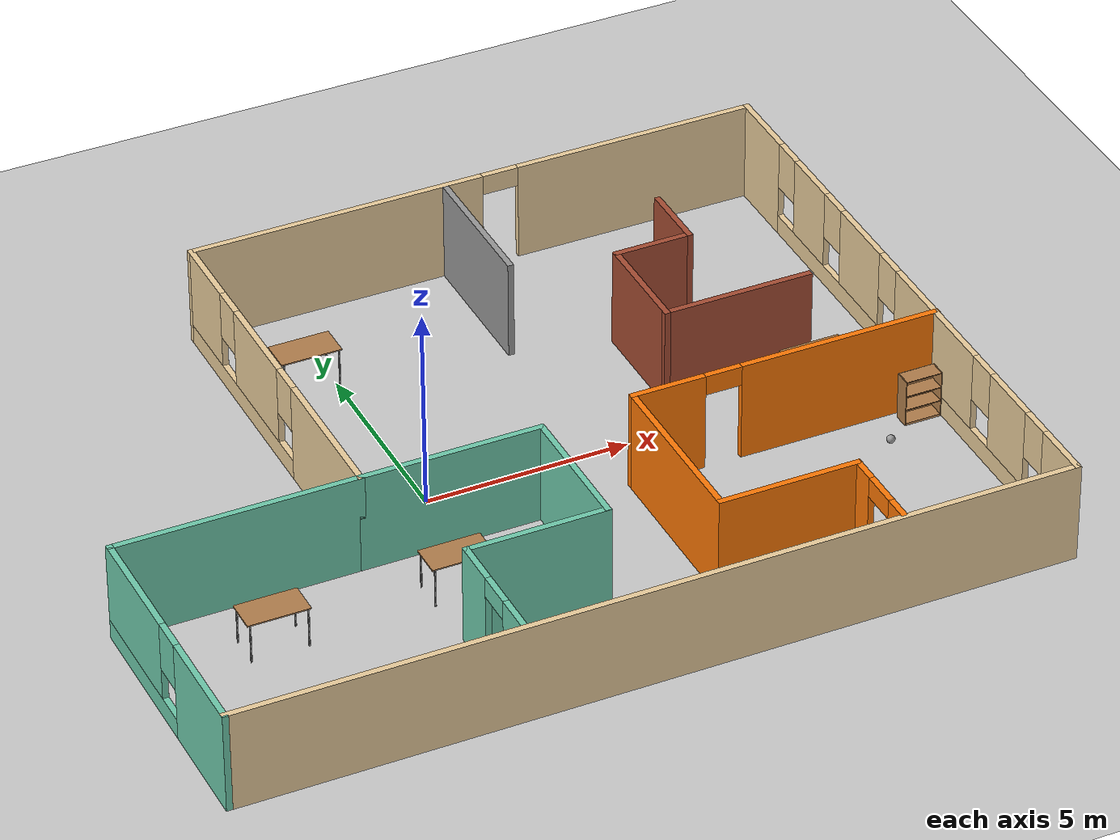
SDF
<sdf version="1.6">
 <world name="default">
  <plugin name="hello" filename="libhello.so"/>
  <light name="sun" type="directional">
   <pose>0 0 10 0 -0 0</pose>
   <diffuse>0.8 0.8 0.8 1</diffuse>
   <specular>0.2 0.2 0.2 1</specular>
   <attenuation>
    <range>1000</range>
    <constant>0.9</constant>
    <linear>0.01</linear>
    <quadratic>0.001</quadratic>
   </attenuation>
   <direction>-0.5 0.1 -0.9</direction>
  </light>
  <model name="ground_plane">
   <static>1</static>
   <link name="link">
    <collision name="collision">
     <geometry><plane><normal>0 0 1</normal><size>100 100</size></plane></geometry>
     <surface><friction><ode><mu>100</mu><mu2>50</mu2></ode></friction></surface>
    </collision>
    <visual name="visual">
     <cast_shadows>0</cast_shadows>
     <geometry><plane><normal>0 0 1</normal><size>100 100</size></plane></geometry>
     <material>
      <script><uri>file://media/materials/scripts/gazebo.material</uri><name>Gazebo/Grey</name></script>
     </material>
    </visual>
   </link>
  </model>
  <gravity>0 0 -9.8</gravity>
  <magnetic_field>6e-06 2.3e-05 -4.2e-05</magnetic_field>
  <atmosphere type="adiabatic"/>
  <physics name="default_physics" default="0" type="ode">
   <max_step_size>0.001</max_step_size>
   <real_time_factor>1</real_time_factor>
   <real_time_update_rate>1000</real_time_update_rate>
  </physics>
  <scene><ambient>0.4 0.4 0.4 1</ambient><background>0.7 0.7 0.7 1</background><shadows>1</shadows></scene>
  <spherical_coordinates>
   <surface_model>EARTH_WGS84</surface_model>
   <latitude_deg>0</latitude_deg>
   <longitude_deg>0</longitude_deg>
   <elevation>0</elevation>
   <heading_deg>0</heading_deg>
  </spherical_coordinates>
  <model name="building">
   <pose>1.9582 0.000348 0 0 -0 0</pose>
   <link name="Wall_1">
    <pose>10.0418 -0.000348 0 0 0 -1.5708</pose>
    <visual name="Wall_1_Visual_0">
     <pose>-7.11784 0 1.25 0 -0 0</pose>
     <geometry><box><size>1.91431 0.15 2.5</size></box></geometry>
     <material>
      <script><uri>file://media/materials/scripts/gazebo.material</uri><name>Gazebo/Grey</name></script>
      <ambient>0.921569 0.807843 0.615686 1</ambient>
     </material>
     <meta><layer>0</layer></meta>
    </visual>
    <collision name="Wall_1_Collision_0">
     <geometry><box><size>1.91431 0.15 2.5</size></box></geometry>
     <pose>-7.11784 0 1.25 0 -0 0</pose>
    </collision>
    <visual name="Wall_1_Visual_1">
     <pose>0.957158 0 0.25 0 -0 0</pose>
     <geometry><box><size>14.2357 0.15 0.5</size></box></geometry>
     <material>
      <script><uri>file://media/materials/scripts/gazebo.material</uri><name>Gazebo/Grey</name></script>
      <ambient>0.921569 0.807843 0.615686 1</ambient>
     </material>
     <meta><layer>0</layer></meta>
    </visual>
    <collision name="Wall_1_Collision_1">
     <geometry><box><size>14.2357 0.15 0.5</size></box></geometry>
     <pose>0.957158 0 0.25 0 -0 0</pose>
    </collision>
    <visual name="Wall_1_Visual_2">
     <pose>-4.59689 0 1.5 0 -0 0</pose>
     <geometry><box><size>1.5276 0.15 2</size></box></geometry>
     <material>
      <script><uri>file://media/materials/scripts/gazebo.material</uri><name>Gazebo/Grey</name></script>
      <ambient>0.921569 0.807843 0.615686 1</ambient>
     </material>
     <meta><layer>0</layer></meta>
    </visual>
    <collision name="Wall_1_Collision_2">
     <geometry><box><size>1.5276 0.15 2</size></box></geometry>
     <pose>-4.59689 0 1.5 0 -0 0</pose>
    </collision>
    <visual name="Wall_1_Visual_3">
     <pose>-2.07091 0 1.5 0 -0 0</pose>
     <geometry><box><size>1.92435 0.15 2</size></box></geometry>
     <material>
      <script><uri>file://media/materials/scripts/gazebo.material</uri><name>Gazebo/Grey</name></script>
      <ambient>0.921569 0.807843 0.615686 1</ambient>
     </material>
     <meta><layer>0</layer></meta>
    </visual>
    <collision name="Wall_1_Collision_3">
     <geometry><box><size>1.92435 0.15 2</size></box></geometry>
     <pose>-2.07091 0 1.5 0 -0 0</pose>
    </collision>
    <visual name="Wall_1_Visual_4">
     <pose>1.53951 0 1.5 0 -0 0</pose>
     <geometry><box><size>3.6965 0.15 2</size></box></geometry>
     <material>
      <script><uri>file://media/materials/scripts/gazebo.material</uri><name>Gazebo/Grey</name></script>
      <ambient>0.921569 0.807843 0.615686 1</ambient>
     </material>
     <meta><layer>0</layer></meta>
    </visual>
    <collision name="Wall_1_Collision_4">
     <geometry><box><size>3.6965 0.15 2</size></box></geometry>
     <pose>1.53951 0 1.5 0 -0 0</pose>
    </collision>
    <visual name="Wall_1_Visual_5">
     <pose>4.99124 0 1.5 0 -0 0</pose>
     <geometry><box><size>1.60695 0.15 2</size></box></geometry>
     <material>
      <script><uri>file://media/materials/scripts/gazebo.material</uri><name>Gazebo/Grey</name></script>
      <ambient>0.921569 0.807843 0.615686 1</ambient>
     </material>
     <meta><layer>0</layer></meta>
    </visual>
    <collision name="Wall_1_Collision_5">
     <geometry><box><size>1.60695 0.15 2</size></box></geometry>
     <pose>4.99124 0 1.5 0 -0 0</pose>
    </collision>
    <visual name="Wall_1_Visual_6">
     <pose>7.33486 0 1.5 0 -0 0</pose>
     <geometry><box><size>1.48029 0.15 2</size></box></geometry>
     <material>
      <script><uri>file://media/materials/scripts/gazebo.material</uri><name>Gazebo/Grey</name></script>
      <ambient>0.921569 0.807843 0.615686 1</ambient>
     </material>
     <meta><layer>0</layer></meta>
    </visual>
    <collision name="Wall_1_Collision_6">
     <geometry><box><size>1.48029 0.15 2</size></box></geometry>
     <pose>7.33486 0 1.5 0 -0 0</pose>
    </collision>
    <visual name="Wall_1_Visual_7">
     <pose>-5.76068 0 1.9 0 -0 0</pose>
     <geometry><box><size>0.8 0.15 1.2</size></box></geometry>
     <material>
      <script><uri>file://media/materials/scripts/gazebo.material</uri><name>Gazebo/Grey</name></script>
      <ambient>0.921569 0.807843 0.615686 1</ambient>
     </material>
     <meta><layer>0</layer></meta>
    </visual>
    <collision name="Wall_1_Collision_7">
     <geometry><box><size>0.8 0.15 1.2</size></box></geometry>
     <pose>-5.76068 0 1.9 0 -0 0</pose>
    </collision>
    <visual name="Wall_1_Visual_8">
     <pose>-3.43309 0 1.9 0 -0 0</pose>
     <geometry><box><size>0.8 0.15 1.2</size></box></geometry>
     <material>
      <script><uri>file://media/materials/scripts/gazebo.material</uri><name>Gazebo/Grey</name></script>
      <ambient>0.921569 0.807843 0.615686 1</ambient>
     </material>
     <meta><layer>0</layer></meta>
    </visual>
    <collision name="Wall_1_Collision_8">
     <geometry><box><size>0.8 0.15 1.2</size></box></geometry>
     <pose>-3.43309 0 1.9 0 -0 0</pose>
    </collision>
    <visual name="Wall_1_Visual_9">
     <pose>-0.708735 0 1.9 0 -0 0</pose>
     <geometry><box><size>0.8 0.15 1.2</size></box></geometry>
     <material>
      <script><uri>file://media/materials/scripts/gazebo.material</uri><name>Gazebo/Grey</name></script>
      <ambient>0.921569 0.807843 0.615686 1</ambient>
     </material>
     <meta><layer>0</layer></meta>
    </visual>
    <collision name="Wall_1_Collision_9">
     <geometry><box><size>0.8 0.15 1.2</size></box></geometry>
     <pose>-0.708735 0 1.9 0 -0 0</pose>
    </collision>
    <visual name="Wall_1_Visual_10">
     <pose>3.78776 0 1.9 0 -0 0</pose>
     <geometry><box><size>0.8 0.15 1.2</size></box></geometry>
     <material>
      <script><uri>file://media/materials/scripts/gazebo.material</uri><name>Gazebo/Grey</name></script>
      <ambient>0.921569 0.807843 0.615686 1</ambient>
     </material>
     <meta><layer>0</layer></meta>
    </visual>
    <collision name="Wall_1_Collision_10">
     <geometry><box><size>0.8 0.15 1.2</size></box></geometry>
     <pose>3.78776 0 1.9 0 -0 0</pose>
    </collision>
    <visual name="Wall_1_Visual_11">
     <pose>6.19472 0 1.9 0 -0 0</pose>
     <geometry><box><size>0.8 0.15 1.2</size></box></geometry>
     <material>
      <script><uri>file://media/materials/scripts/gazebo.material</uri><name>Gazebo/Grey</name></script>
      <ambient>0.921569 0.807843 0.615686 1</ambient>
     </material>
     <meta><layer>0</layer></meta>
    </visual>
    <collision name="Wall_1_Collision_11">
     <geometry><box><size>0.8 0.15 1.2</size></box></geometry>
     <pose>6.19472 0 1.9 0 -0 0</pose>
    </collision>
   </link>
   <link name="Wall_11">
    <collision name="Wall_11_Collision">
     <geometry><box><size>4.5 0.15 2.5</size></box></geometry>
     <pose>0 0 1.25 0 -0 0</pose>
    </collision>
    <visual name="Wall_11_Visual">
     <pose>0 0 1.25 0 -0 0</pose>
     <geometry><box><size>4.5 0.15 2.5</size></box></geometry>
     <material>
      <script><uri>file://media/materials/scripts/gazebo.material</uri><name>Gazebo/Grey</name></script>
      <ambient>0.435294 0.796078 0.67451 1</ambient>
     </material>
     <meta><layer>0</layer></meta>
    </visual>
    <pose>-2.03317 -1.65035 0 0 -0 0</pose>
   </link>
   <link name="Wall_12">
    <collision name="Wall_12_Collision">
     <geometry><box><size>3.5 0.15 2.5</size></box></geometry>
     <pose>0 0 1.25 0 -0 0</pose>
    </collision>
    <visual name="Wall_12_Visual">
     <pose>0 0 1.25 0 -0 0</pose>
     <geometry><box><size>3.5 0.15 2.5</size></box></geometry>
     <material>
      <script><uri>file://media/materials/scripts/gazebo.material</uri><name>Gazebo/Grey</name></script>
      <ambient>0.435294 0.796078 0.67451 1</ambient>
     </material>
     <meta><layer>0</layer></meta>
    </visual>
    <pose>0.141825 -3.32535 0 0 0 -1.5708</pose>
   </link>
   <link name="Wall_13">
    <collision name="Wall_13_Collision">
     <geometry><box><size>3.5 0.15 2.5</size></box></geometry>
     <pose>0 0 1.25 0 -0 0</pose>
    </collision>
    <visual name="Wall_13_Visual">
     <pose>0 0 1.25 0 -0 0</pose>
     <geometry><box><size>3.5 0.15 2.5</size></box></geometry>
     <material>
      <script><uri>file://media/materials/scripts/gazebo.material</uri><name>Gazebo/Grey</name></script>
      <ambient>0.435294 0.796078 0.67451 1</ambient>
     </material>
     <meta><layer>0</layer></meta>
    </visual>
    <pose>-1.53317 -5.00035 0 0 -0 3.14159</pose>
   </link>
   <link name="Wall_14">
    <pose>-3.20818 -6.42535 0 0 0 -1.5708</pose>
    <visual name="Wall_14_Visual_0">
     <pose>-0.90784 0 1.25 0 -0 0</pose>
     <geometry><box><size>1.18432 0.15 2.5</size></box></geometry>
     <material>
      <script><uri>file://media/materials/scripts/gazebo.material</uri><name>Gazebo/Grey</name></script>
      <ambient>0.435294 0.796078 0.67451 1</ambient>
     </material>
     <meta><layer>0</layer></meta>
    </visual>
    <collision name="Wall_14_Collision_0">
     <geometry><box><size>1.18432 0.15 2.5</size></box></geometry>
     <pose>-0.90784 0 1.25 0 -0 0</pose>
    </collision>
    <visual name="Wall_14_Visual_1">
     <pose>1.04216 0 1.25 0 -0 0</pose>
     <geometry><box><size>0.91568 0.15 2.5</size></box></geometry>
     <material>
      <script><uri>file://media/materials/scripts/gazebo.material</uri><name>Gazebo/Grey</name></script>
      <ambient>0.435294 0.796078 0.67451 1</ambient>
     </material>
     <meta><layer>0</layer></meta>
    </visual>
    <collision name="Wall_14_Collision_1">
     <geometry><box><size>0.91568 0.15 2.5</size></box></geometry>
     <pose>1.04216 0 1.25 0 -0 0</pose>
    </collision>
    <visual name="Wall_14_Visual_2">
     <pose>0.13432 0 2.25 0 -0 0</pose>
     <geometry><box><size>0.9 0.15 0.5</size></box></geometry>
     <material>
      <script><uri>file://media/materials/scripts/gazebo.material</uri><name>Gazebo/Grey</name></script>
      <ambient>0.435294 0.796078 0.67451 1</ambient>
     </material>
     <meta><layer>0</layer></meta>
    </visual>
    <collision name="Wall_14_Collision_2">
     <geometry><box><size>0.9 0.15 0.5</size></box></geometry>
     <pose>0.13432 0 2.25 0 -0 0</pose>
    </collision>
   </link>
   <link name="Wall_16">
    <collision name="Wall_16_Collision">
     <geometry><box><size>4.5 0.15 2.5</size></box></geometry>
     <pose>0 0 1.25 0 -0 0</pose>
    </collision>
    <visual name="Wall_16_Visual">
     <pose>0 0 1.25 0 -0 0</pose>
     <geometry><box><size>4.5 0.15 2.5</size></box></geometry>
     <material>
      <script><uri>file://media/materials/scripts/gazebo.material</uri><name>Gazebo/Grey</name></script>
      <ambient>0.996078 0.47451 0.0196078 1</ambient>
     </material>
     <meta><layer>0</layer></meta>
    </visual>
    <pose>2.45818 -3.63449 0 0 0 -1.5708</pose>
   </link>
   <link name="Wall_17">
    <collision name="Wall_17_Collision">
     <geometry><box><size>3.5 0.15 2.5</size></box></geometry>
     <pose>0 0 1.25 0 -0 0</pose>
    </collision>
    <visual name="Wall_17_Visual">
     <pose>0 0 1.25 0 -0 0</pose>
     <geometry><box><size>3.5 0.15 2.5</size></box></geometry>
     <material>
      <script><uri>file://media/materials/scripts/gazebo.material</uri><name>Gazebo/Grey</name></script>
      <ambient>0.996078 0.47451 0.0196078 1</ambient>
     </material>
     <meta><layer>0</layer></meta>
    </visual>
    <pose>4.13318 -5.80949 0 0 -0 0</pose>
   </link>
   <link name="Wall_18">
    <pose>5.80818 -6.85949 0 0 0 -1.5708</pose>
    <visual name="Wall_18_Visual_0">
     <pose>-0.7635 0 1.25 0 -0 0</pose>
     <geometry><box><size>0.723001 0.15 2.5</size></box></geometry>
     <material>
      <script><uri>file://media/materials/scripts/gazebo.material</uri><name>Gazebo/Grey</name></script>
      <ambient>0.996078 0.47451 0.0196078 1</ambient>
     </material>
     <meta><layer>0</layer></meta>
    </visual>
    <collision name="Wall_18_Collision_0">
     <geometry><box><size>0.723001 0.15 2.5</size></box></geometry>
     <pose>-0.7635 0 1.25 0 -0 0</pose>
    </collision>
    <visual name="Wall_18_Visual_1">
     <pose>0.8115 0 1.25 0 -0 0</pose>
     <geometry><box><size>0.626999 0.15 2.5</size></box></geometry>
     <material>
      <script><uri>file://media/materials/scripts/gazebo.material</uri><name>Gazebo/Grey</name></script>
      <ambient>0.996078 0.47451 0.0196078 1</ambient>
     </material>
     <meta><layer>0</layer></meta>
    </visual>
    <collision name="Wall_18_Collision_1">
     <geometry><box><size>0.626999 0.15 2.5</size></box></geometry>
     <pose>0.8115 0 1.25 0 -0 0</pose>
    </collision>
    <visual name="Wall_18_Visual_2">
     <pose>0.048001 0 2.25 0 -0 0</pose>
     <geometry><box><size>0.9 0.15 0.5</size></box></geometry>
     <material>
      <script><uri>file://media/materials/scripts/gazebo.material</uri><name>Gazebo/Grey</name></script>
      <ambient>0.996078 0.47451 0.0196078 1</ambient>
     </material>
     <meta><layer>0</layer></meta>
    </visual>
    <collision name="Wall_18_Collision_2">
     <geometry><box><size>0.9 0.15 0.5</size></box></geometry>
     <pose>0.048001 0 2.25 0 -0 0</pose>
    </collision>
   </link>
   <link name="Wall_20">
    <pose>6.25818 -1.45949 0 0 -0 0</pose>
    <visual name="Wall_20_Visual_0">
     <pose>-2.95213 0 1.25 0 -0 0</pose>
     <geometry><box><size>1.84573 0.15 2.5</size></box></geometry>
     <material>
      <script><uri>file://media/materials/scripts/gazebo.material</uri><name>Gazebo/Grey</name></script>
      <ambient>0.996078 0.47451 0.0196078 1</ambient>
     </material>
     <meta><layer>0</layer></meta>
    </visual>
    <collision name="Wall_20_Collision_0">
     <geometry><box><size>1.84573 0.15 2.5</size></box></geometry>
     <pose>-2.95213 0 1.25 0 -0 0</pose>
    </collision>
    <visual name="Wall_20_Visual_1">
     <pose>1.37287 0 1.25 0 -0 0</pose>
     <geometry><box><size>5.00427 0.15 2.5</size></box></geometry>
     <material>
      <script><uri>file://media/materials/scripts/gazebo.material</uri><name>Gazebo/Grey</name></script>
      <ambient>0.996078 0.47451 0.0196078 1</ambient>
     </material>
     <meta><layer>0</layer></meta>
    </visual>
    <collision name="Wall_20_Collision_1">
     <geometry><box><size>5.00427 0.15 2.5</size></box></geometry>
     <pose>1.37287 0 1.25 0 -0 0</pose>
    </collision>
    <visual name="Wall_20_Visual_2">
     <pose>-1.57927 0 2.25 0 -0 0</pose>
     <geometry><box><size>0.9 0.15 0.5</size></box></geometry>
     <material>
      <script><uri>file://media/materials/scripts/gazebo.material</uri><name>Gazebo/Grey</name></script>
      <ambient>0.996078 0.47451 0.0196078 1</ambient>
     </material>
     <meta><layer>0</layer></meta>
    </visual>
    <collision name="Wall_20_Collision_2">
     <geometry><box><size>0.9 0.15 0.5</size></box></geometry>
     <pose>-1.57927 0 2.25 0 -0 0</pose>
    </collision>
   </link>
   <link name="Wall_3">
    <collision name="Wall_3_Collision">
     <geometry><box><size>20.25 0.15 2.5</size></box></geometry>
     <pose>0 0 1.25 0 -0 0</pose>
    </collision>
    <visual name="Wall_3_Visual">
     <pose>0 0 1.25 0 -0 0</pose>
     <geometry><box><size>20.25 0.15 2.5</size></box></geometry>
     <material>
      <script><uri>file://media/materials/scripts/gazebo.material</uri><name>Gazebo/Grey</name></script>
      <ambient>0.921569 0.807843 0.615686 1</ambient>
     </material>
     <meta><layer>0</layer></meta>
    </visual>
    <pose>-0.008175 -8.00035 0 0 -0 3.14159</pose>
   </link>
   <link name="Wall_4">
    <pose>-10.0582 -4.82535 0 0 -0 1.5708</pose>
    <visual name="Wall_4_Visual_0">
     <pose>-1.91473 0 1.25 0 -0 0</pose>
     <geometry><box><size>2.67054 0.15 2.5</size></box></geometry>
     <material>
      <script><uri>file://media/materials/scripts/gazebo.material</uri><name>Gazebo/Grey</name></script>
      <ambient>0.435294 0.796078 0.67451 1</ambient>
     </material>
     <meta><layer>0</layer></meta>
    </visual>
    <collision name="Wall_4_Collision_0">
     <geometry><box><size>2.67054 0.15 2.5</size></box></geometry>
     <pose>-1.91473 0 1.25 0 -0 0</pose>
    </collision>
    <visual name="Wall_4_Visual_1">
     <pose>1.33527 0 0.25 0 -0 0</pose>
     <geometry><box><size>3.82946 0.15 0.5</size></box></geometry>
     <material>
      <script><uri>file://media/materials/scripts/gazebo.material</uri><name>Gazebo/Grey</name></script>
      <ambient>0.435294 0.796078 0.67451 1</ambient>
     </material>
     <meta><layer>0</layer></meta>
    </visual>
    <collision name="Wall_4_Collision_1">
     <geometry><box><size>3.82946 0.15 0.5</size></box></geometry>
     <pose>1.33527 0 0.25 0 -0 0</pose>
    </collision>
    <visual name="Wall_4_Visual_2">
     <pose>1.73527 0 1.5 0 -0 0</pose>
     <geometry><box><size>3.02947 0.15 2</size></box></geometry>
     <material>
      <script><uri>file://media/materials/scripts/gazebo.material</uri><name>Gazebo/Grey</name></script>
      <ambient>0.435294 0.796078 0.67451 1</ambient>
     </material>
     <meta><layer>0</layer></meta>
    </visual>
    <collision name="Wall_4_Collision_2">
     <geometry><box><size>3.02947 0.15 2</size></box></geometry>
     <pose>1.73527 0 1.5 0 -0 0</pose>
    </collision>
    <visual name="Wall_4_Visual_3">
     <pose>-0.179465 0 1.9 0 -0 0</pose>
     <geometry><box><size>0.8 0.15 1.2</size></box></geometry>
     <material>
      <script><uri>file://media/materials/scripts/gazebo.material</uri><name>Gazebo/Grey</name></script>
      <ambient>0.435294 0.796078 0.67451 1</ambient>
     </material>
     <meta><layer>0</layer></meta>
    </visual>
    <collision name="Wall_4_Collision_3">
     <geometry><box><size>0.8 0.15 1.2</size></box></geometry>
     <pose>-0.179465 0 1.9 0 -0 0</pose>
    </collision>
   </link>
   <link name="Wall_5">
    <collision name="Wall_5_Collision">
     <geometry><box><size>6 0.15 2.5</size></box></geometry>
     <pose>0 0 1.25 0 -0 0</pose>
    </collision>
    <visual name="Wall_5_Visual">
     <pose>0 0 1.25 0 -0 0</pose>
     <geometry><box><size>6 0.15 2.5</size></box></geometry>
     <material>
      <script><uri>file://media/materials/scripts/gazebo.material</uri><name>Gazebo/Grey</name></script>
      <ambient>0.435294 0.796078 0.67451 1</ambient>
     </material>
     <meta><layer>0</layer></meta>
    </visual>
    <pose>-7.13317 -1.65035 0 0 -0 0</pose>
   </link>
   <link name="Wall_6">
    <pose>-4.20817 3.17465 0 0 -0 1.5708</pose>
    <visual name="Wall_6_Visual_0">
     <pose>-3.01028 0 1.25 0 -0 0</pose>
     <geometry><box><size>3.77943 0.15 2.5</size></box></geometry>
     <material>
      <script><uri>file://media/materials/scripts/gazebo.material</uri><name>Gazebo/Grey</name></script>
      <ambient>0.921569 0.807843 0.615686 1</ambient>
     </material>
     <meta><layer>0</layer></meta>
    </visual>
    <collision name="Wall_6_Collision_0">
     <geometry><box><size>3.77943 0.15 2.5</size></box></geometry>
     <pose>-3.01028 0 1.25 0 -0 0</pose>
    </collision>
    <visual name="Wall_6_Visual_1">
     <pose>1.88972 0 0.25 0 -0 0</pose>
     <geometry><box><size>6.02057 0.15 0.5</size></box></geometry>
     <material>
      <script><uri>file://media/materials/scripts/gazebo.material</uri><name>Gazebo/Grey</name></script>
      <ambient>0.921569 0.807843 0.615686 1</ambient>
     </material>
     <meta><layer>0</layer></meta>
    </visual>
    <collision name="Wall_6_Collision_1">
     <geometry><box><size>6.02057 0.15 0.5</size></box></geometry>
     <pose>1.88972 0 0.25 0 -0 0</pose>
    </collision>
    <visual name="Wall_6_Visual_2">
     <pose>0.919335 0 1.5 0 -0 0</pose>
     <geometry><box><size>2.4798 0.15 2</size></box></geometry>
     <material>
      <script><uri>file://media/materials/scripts/gazebo.material</uri><name>Gazebo/Grey</name></script>
      <ambient>0.921569 0.807843 0.615686 1</ambient>
     </material>
     <meta><layer>0</layer></meta>
    </visual>
    <collision name="Wall_6_Collision_2">
     <geometry><box><size>2.4798 0.15 2</size></box></geometry>
     <pose>0.919335 0 1.5 0 -0 0</pose>
    </collision>
    <visual name="Wall_6_Visual_3">
     <pose>3.92962 0 1.5 0 -0 0</pose>
     <geometry><box><size>1.94077 0.15 2</size></box></geometry>
     <material>
      <script><uri>file://media/materials/scripts/gazebo.material</uri><name>Gazebo/Grey</name></script>
      <ambient>0.921569 0.807843 0.615686 1</ambient>
     </material>
     <meta><layer>0</layer></meta>
    </visual>
    <collision name="Wall_6_Collision_3">
     <geometry><box><size>1.94077 0.15 2</size></box></geometry>
     <pose>3.92962 0 1.5 0 -0 0</pose>
    </collision>
    <visual name="Wall_6_Visual_4">
     <pose>-0.720565 0 1.9 0 -0 0</pose>
     <geometry><box><size>0.8 0.15 1.2</size></box></geometry>
     <material>
      <script><uri>file://media/materials/scripts/gazebo.material</uri><name>Gazebo/Grey</name></script>
      <ambient>0.921569 0.807843 0.615686 1</ambient>
     </material>
     <meta><layer>0</layer></meta>
    </visual>
    <collision name="Wall_6_Collision_4">
     <geometry><box><size>0.8 0.15 1.2</size></box></geometry>
     <pose>-0.720565 0 1.9 0 -0 0</pose>
    </collision>
    <visual name="Wall_6_Visual_5">
     <pose>2.55924 0 1.9 0 -0 0</pose>
     <geometry><box><size>0.8 0.15 1.2</size></box></geometry>
     <material>
      <script><uri>file://media/materials/scripts/gazebo.material</uri><name>Gazebo/Grey</name></script>
      <ambient>0.921569 0.807843 0.615686 1</ambient>
     </material>
     <meta><layer>0</layer></meta>
    </visual>
    <collision name="Wall_6_Collision_5">
     <geometry><box><size>0.8 0.15 1.2</size></box></geometry>
     <pose>2.55924 0 1.9 0 -0 0</pose>
    </collision>
   </link>
   <link name="Wall_7">
    <pose>2.91682 7.99965 0 0 -0 0</pose>
    <visual name="Wall_7_Visual_0">
     <pose>-3.50635 0 1.25 0 -0 0</pose>
     <geometry><box><size>7.38738 0.15 2.5</size></box></geometry>
     <material>
      <script><uri>file://media/materials/scripts/gazebo.material</uri><name>Gazebo/Grey</name></script>
      <ambient>0.921569 0.807843 0.615686 1</ambient>
     </material>
     <meta><layer>0</layer></meta>
    </visual>
    <collision name="Wall_7_Collision_0">
     <geometry><box><size>7.38738 0.15 2.5</size></box></geometry>
     <pose>-3.50635 0 1.25 0 -0 0</pose>
    </collision>
    <visual name="Wall_7_Visual_1">
     <pose>4.14369 0 1.25 0 -0 0</pose>
     <geometry><box><size>6.11271 0.15 2.5</size></box></geometry>
     <material>
      <script><uri>file://media/materials/scripts/gazebo.material</uri><name>Gazebo/Grey</name></script>
      <ambient>0.921569 0.807843 0.615686 1</ambient>
     </material>
     <meta><layer>0</layer></meta>
    </visual>
    <collision name="Wall_7_Collision_1">
     <geometry><box><size>6.11271 0.15 2.5</size></box></geometry>
     <pose>4.14369 0 1.25 0 -0 0</pose>
    </collision>
    <visual name="Wall_7_Visual_2">
     <pose>0.637338 0 2.25 0 -0 0</pose>
     <geometry><box><size>0.9 0.15 0.5</size></box></geometry>
     <material>
      <script><uri>file://media/materials/scripts/gazebo.material</uri><name>Gazebo/Grey</name></script>
      <ambient>0.921569 0.807843 0.615686 1</ambient>
     </material>
     <meta><layer>0</layer></meta>
    </visual>
    <collision name="Wall_7_Collision_2">
     <geometry><box><size>0.9 0.15 0.5</size></box></geometry>
     <pose>0.637338 0 2.25 0 -0 0</pose>
    </collision>
   </link>
   <link name="Wall_9">
    <collision name="Wall_9_Collision">
     <geometry><box><size>3.75 0.15 2.5</size></box></geometry>
     <pose>0 0 1.25 0 -0 0</pose>
    </collision>
    <visual name="Wall_9_Visual">
     <pose>0 0 1.25 0 -0 0</pose>
     <geometry><box><size>3.75 0.15 2.5</size></box></geometry>
     <material>
      <script><uri>file://media/materials/scripts/gazebo.material</uri><name>Gazebo/Grey</name></script>
      <ambient>1 1 1 1</ambient>
     </material>
     <meta><layer>0</layer></meta>
    </visual>
    <pose>2.154 6.20035 0 0 0 -1.5708</pose>
   </link>
   <static>1</static>
  </model>
  <model name="bookshelf">
   <static>1</static>
   <link name="link">
    <inertial><mass>1</mass></inertial>
    <collision name="back">
     <pose>0 0.005 0.6 0 -0 0</pose>
     <geometry><box><size>0.9 0.01 1.2</size></box></geometry>
    </collision>
    <visual name="visual1">
     <pose>0 0.005 0.6 0 -0 0</pose>
     <geometry><box><size>0.9 0.01 1.2</size></box></geometry>
     <material>
      <script><uri>file://media/materials/scripts/gazebo.material</uri><name>Gazebo/Wood</name></script>
     </material>
    </visual>
    <collision name="left_side">
     <pose>0.45 -0.195 0.6 0 -0 0</pose>
     <geometry><box><size>0.02 0.4 1.2</size></box></geometry>
    </collision>
    <visual name="visual2">
     <pose>0.45 -0.195 0.6 0 -0 0</pose>
     <geometry><box><size>0.02 0.4 1.2</size></box></geometry>
     <material>
      <script><uri>file://media/materials/scripts/gazebo.material</uri><name>Gazebo/Wood</name></script>
     </material>
    </visual>
    <collision name="right_side">
     <pose>-0.45 -0.195 0.6 0 -0 0</pose>
     <geometry><box><size>0.02 0.4 1.2</size></box></geometry>
    </collision>
    <visual name="visual3">
     <pose>-0.45 -0.195 0.6 0 -0 0</pose>
     <geometry><box><size>0.02 0.4 1.2</size></box></geometry>
     <material>
      <script><uri>file://media/materials/scripts/gazebo.material</uri><name>Gazebo/Wood</name></script>
     </material>
    </visual>
    <collision name="bottom">
     <pose>0 -0.195 0.03 0 -0 0</pose>
     <geometry><box><size>0.88 0.4 0.06</size></box></geometry>
    </collision>
    <visual name="visual4">
     <pose>0 -0.195 0.03 0 -0 0</pose>
     <geometry><box><size>0.88 0.4 0.06</size></box></geometry>
     <material>
      <script><uri>file://media/materials/scripts/gazebo.material</uri><name>Gazebo/Wood</name></script>
     </material>
    </visual>
    <collision name="top">
     <pose>0 -0.195 1.19 0 -0 0</pose>
     <geometry><box><size>0.88 0.4 0.02</size></box></geometry>
    </collision>
    <visual name="visual5">
     <pose>0 -0.195 1.19 0 -0 0</pose>
     <geometry><box><size>0.88 0.4 0.02</size></box></geometry>
     <material>
      <script><uri>file://media/materials/scripts/gazebo.material</uri><name>Gazebo/Wood</name></script>
     </material>
    </visual>
    <collision name="low_shelf">
     <pose>0 -0.195 0.43 0 -0 0</pose>
     <geometry><box><size>0.88 0.4 0.02</size></box></geometry>
    </collision>
    <visual name="visual6">
     <pose>0 -0.195 0.43 0 -0 0</pose>
     <geometry><box><size>0.88 0.4 0.02</size></box></geometry>
     <material>
      <script><uri>file://media/materials/scripts/gazebo.material</uri><name>Gazebo/Wood</name></script>
     </material>
    </visual>
    <collision name="high_shelf">
     <pose>0 -0.195 0.8 0 -0 0</pose>
     <geometry><box><size>0.88 0.4 0.02</size></box></geometry>
    </collision>
    <visual name="visual7">
     <pose>0 -0.195 0.8 0 -0 0</pose>
     <geometry><box><size>0.88 0.4 0.02</size></box></geometry>
     <material>
      <script><uri>file://media/materials/scripts/gazebo.material</uri><name>Gazebo/Wood</name></script>
     </material>
    </visual>
   </link>
   <pose>11.4504 -1.671 0 0 -0 0</pose>
  </model>
  <model name="table">
   <static>1</static>
   <link name="link">
    <collision name="surface">
     <pose>0 0 1 0 -0 0</pose>
     <geometry><box><size>1.5 0.8 0.03</size></box></geometry>
     <surface><friction><ode><mu>0.6</mu><mu2>0.6</mu2></ode></friction></surface>
    </collision>
    <visual name="visual1">
     <pose>0 0 1 0 -0 0</pose>
     <geometry><box><size>1.5 0.8 0.03</size></box></geometry>
     <material>
      <script><uri>file://media/materials/scripts/gazebo.material</uri><name>Gazebo/Wood</name></script>
     </material>
    </visual>
    <collision name="front_left_leg">
     <pose>0.68 0.38 0.5 0 -0 0</pose>
     <geometry><cylinder><radius>0.02</radius><length>1</length></cylinder></geometry>
    </collision>
    <visual name="front_left_leg">
     <pose>0.68 0.38 0.5 0 -0 0</pose>
     <geometry><cylinder><radius>0.02</radius><length>1</length></cylinder></geometry>
     <material>
      <script><uri>file://media/materials/scripts/gazebo.material</uri><name>Gazebo/Grey</name></script>
     </material>
    </visual>
    <collision name="front_right_leg">
     <pose>0.68 -0.38 0.5 0 -0 0</pose>
     <geometry><cylinder><radius>0.02</radius><length>1</length></cylinder></geometry>
    </collision>
    <visual name="front_right_leg">
     <pose>0.68 -0.38 0.5 0 -0 0</pose>
     <geometry><cylinder><radius>0.02</radius><length>1</length></cylinder></geometry>
     <material>
      <script><uri>file://media/materials/scripts/gazebo.material</uri><name>Gazebo/Grey</name></script>
     </material>
    </visual>
    <collision name="back_right_leg">
     <pose>-0.68 -0.38 0.5 0 -0 0</pose>
     <geometry><cylinder><radius>0.02</radius><length>1</length></cylinder></geometry>
    </collision>
    <visual name="back_right_leg">
     <pose>-0.68 -0.38 0.5 0 -0 0</pose>
     <geometry><cylinder><radius>0.02</radius><length>1</length></cylinder></geometry>
     <material>
      <script><uri>file://media/materials/scripts/gazebo.material</uri><name>Gazebo/Grey</name></script>
     </material>
    </visual>
    <collision name="back_left_leg">
     <pose>-0.68 0.38 0.5 0 -0 0</pose>
     <geometry><cylinder><radius>0.02</radius><length>1</length></cylinder></geometry>
    </collision>
    <visual name="back_left_leg">
     <pose>-0.68 0.38 0.5 0 -0 0</pose>
     <geometry><cylinder><radius>0.02</radius><length>1</length></cylinder></geometry>
     <material>
      <script><uri>file://media/materials/scripts/gazebo.material</uri><name>Gazebo/Grey</name></script>
     </material>
    </visual>
   </link>
   <pose>-0.692201 -3.1997 0 0 -0 0</pose>
  </model>
  <model name="table_0">
   <static>1</static>
   <link name="link">
    <collision name="surface">
     <pose>0 0 1 0 -0 0</pose>
     <geometry><box><size>1.5 0.8 0.03</size></box></geometry>
     <surface><friction><ode><mu>0.6</mu><mu2>0.6</mu2></ode></friction></surface>
    </collision>
    <visual name="visual1">
     <pose>0 0 1 0 -0 0</pose>
     <geometry><box><size>1.5 0.8 0.03</size></box></geometry>
     <material>
      <script><uri>file://media/materials/scripts/gazebo.material</uri><name>Gazebo/Wood</name></script>
     </material>
    </visual>
    <collision name="front_left_leg">
     <pose>0.68 0.38 0.5 0 -0 0</pose>
     <geometry><cylinder><radius>0.02</radius><length>1</length></cylinder></geometry>
    </collision>
    <visual name="front_left_leg">
     <pose>0.68 0.38 0.5 0 -0 0</pose>
     <geometry><cylinder><radius>0.02</radius><length>1</length></cylinder></geometry>
     <material>
      <script><uri>file://media/materials/scripts/gazebo.material</uri><name>Gazebo/Grey</name></script>
     </material>
    </visual>
    <collision name="front_right_leg">
     <pose>0.68 -0.38 0.5 0 -0 0</pose>
     <geometry><cylinder><radius>0.02</radius><length>1</length></cylinder></geometry>
    </collision>
    <visual name="front_right_leg">
     <pose>0.68 -0.38 0.5 0 -0 0</pose>
     <geometry><cylinder><radius>0.02</radius><length>1</length></cylinder></geometry>
     <material>
      <script><uri>file://media/materials/scripts/gazebo.material</uri><name>Gazebo/Grey</name></script>
     </material>
    </visual>
    <collision name="back_right_leg">
     <pose>-0.68 -0.38 0.5 0 -0 0</pose>
     <geometry><cylinder><radius>0.02</radius><length>1</length></cylinder></geometry>
    </collision>
    <visual name="back_right_leg">
     <pose>-0.68 -0.38 0.5 0 -0 0</pose>
     <geometry><cylinder><radius>0.02</radius><length>1</length></cylinder></geometry>
     <material>
      <script><uri>file://media/materials/scripts/gazebo.material</uri><name>Gazebo/Grey</name></script>
     </material>
    </visual>
    <collision name="back_left_leg">
     <pose>-0.68 0.38 0.5 0 -0 0</pose>
     <geometry><cylinder><radius>0.02</radius><length>1</length></cylinder></geometry>
    </collision>
    <visual name="back_left_leg">
     <pose>-0.68 0.38 0.5 0 -0 0</pose>
     <geometry><cylinder><radius>0.02</radius><length>1</length></cylinder></geometry>
     <material>
      <script><uri>file://media/materials/scripts/gazebo.material</uri><name>Gazebo/Grey</name></script>
     </material>
    </visual>
   </link>
   <pose>-5.07475 -3.28874 0 0 -0 0</pose>
  </model>
  <model name="table_1">
   <static>1</static>
   <link name="link">
    <collision name="surface">
     <pose>0 0 1 0 -0 0</pose>
     <geometry><box><size>1.5 0.8 0.03</size></box></geometry>
     <surface><friction><ode><mu>0.6</mu><mu2>0.6</mu2></ode></friction></surface>
    </collision>
    <visual name="visual1">
     <pose>0 0 1 0 -0 0</pose>
     <geometry><box><size>1.5 0.8 0.03</size></box></geometry>
     <material>
      <script><uri>file://media/materials/scripts/gazebo.material</uri><name>Gazebo/Wood</name></script>
     </material>
    </visual>
    <collision name="front_left_leg">
     <pose>0.68 0.38 0.5 0 -0 0</pose>
     <geometry><cylinder><radius>0.02</radius><length>1</length></cylinder></geometry>
    </collision>
    <visual name="front_left_leg">
     <pose>0.68 0.38 0.5 0 -0 0</pose>
     <geometry><cylinder><radius>0.02</radius><length>1</length></cylinder></geometry>
     <material>
      <script><uri>file://media/materials/scripts/gazebo.material</uri><name>Gazebo/Grey</name></script>
     </material>
    </visual>
    <collision name="front_right_leg">
     <pose>0.68 -0.38 0.5 0 -0 0</pose>
     <geometry><cylinder><radius>0.02</radius><length>1</length></cylinder></geometry>
    </collision>
    <visual name="front_right_leg">
     <pose>0.68 -0.38 0.5 0 -0 0</pose>
     <geometry><cylinder><radius>0.02</radius><length>1</length></cylinder></geometry>
     <material>
      <script><uri>file://media/materials/scripts/gazebo.material</uri><name>Gazebo/Grey</name></script>
     </material>
    </visual>
    <collision name="back_right_leg">
     <pose>-0.68 -0.38 0.5 0 -0 0</pose>
     <geometry><cylinder><radius>0.02</radius><length>1</length></cylinder></geometry>
    </collision>
    <visual name="back_right_leg">
     <pose>-0.68 -0.38 0.5 0 -0 0</pose>
     <geometry><cylinder><radius>0.02</radius><length>1</length></cylinder></geometry>
     <material>
      <script><uri>file://media/materials/scripts/gazebo.material</uri><name>Gazebo/Grey</name></script>
     </material>
    </visual>
    <collision name="back_left_leg">
     <pose>-0.68 0.38 0.5 0 -0 0</pose>
     <geometry><cylinder><radius>0.02</radius><length>1</length></cylinder></geometry>
    </collision>
    <visual name="back_left_leg">
     <pose>-0.68 0.38 0.5 0 -0 0</pose>
     <geometry><cylinder><radius>0.02</radius><length>1</length></cylinder></geometry>
     <material>
      <script><uri>file://media/materials/scripts/gazebo.material</uri><name>Gazebo/Grey</name></script>
     </material>
    </visual>
   </link>
   <pose>-0.627337 5.2894 0 0 -0 0</pose>
  </model>
  <model name="table_2">
   <static>1</static>
   <link name="link">
    <collision name="surface">
     <pose>0 0 1 0 -0 0</pose>
     <geometry><box><size>1.5 0.8 0.03</size></box></geometry>
     <surface><friction><ode><mu>0.6</mu><mu2>0.6</mu2></ode></friction></surface>
    </collision>
    <visual name="visual1">
     <pose>0 0 1 0 -0 0</pose>
     <geometry><box><size>1.5 0.8 0.03</size></box></geometry>
     <material>
      <script><uri>file://media/materials/scripts/gazebo.material</uri><name>Gazebo/Wood</name></script>
     </material>
    </visual>
    <collision name="front_left_leg">
     <pose>0.68 0.38 0.5 0 -0 0</pose>
     <geometry><cylinder><radius>0.02</radius><length>1</length></cylinder></geometry>
    </collision>
    <visual name="front_left_leg">
     <pose>0.68 0.38 0.5 0 -0 0</pose>
     <geometry><cylinder><radius>0.02</radius><length>1</length></cylinder></geometry>
     <material>
      <script><uri>file://media/materials/scripts/gazebo.material</uri><name>Gazebo/Grey</name></script>
     </material>
    </visual>
    <collision name="front_right_leg">
     <pose>0.68 -0.38 0.5 0 -0 0</pose>
     <geometry><cylinder><radius>0.02</radius><length>1</length></cylinder></geometry>
    </collision>
    <visual name="front_right_leg">
     <pose>0.68 -0.38 0.5 0 -0 0</pose>
     <geometry><cylinder><radius>0.02</radius><length>1</length></cylinder></geometry>
     <material>
      <script><uri>file://media/materials/scripts/gazebo.material</uri><name>Gazebo/Grey</name></script>
     </material>
    </visual>
    <collision name="back_right_leg">
     <pose>-0.68 -0.38 0.5 0 -0 0</pose>
     <geometry><cylinder><radius>0.02</radius><length>1</length></cylinder></geometry>
    </collision>
    <visual name="back_right_leg">
     <pose>-0.68 -0.38 0.5 0 -0 0</pose>
     <geometry><cylinder><radius>0.02</radius><length>1</length></cylinder></geometry>
     <material>
      <script><uri>file://media/materials/scripts/gazebo.material</uri><name>Gazebo/Grey</name></script>
     </material>
    </visual>
    <collision name="back_left_leg">
     <pose>-0.68 0.38 0.5 0 -0 0</pose>
     <geometry><cylinder><radius>0.02</radius><length>1</length></cylinder></geometry>
    </collision>
    <visual name="back_left_leg">
     <pose>-0.68 0.38 0.5 0 -0 0</pose>
     <geometry><cylinder><radius>0.02</radius><length>1</length></cylinder></geometry>
     <material>
      <script><uri>file://media/materials/scripts/gazebo.material</uri><name>Gazebo/Grey</name></script>
     </material>
    </visual>
   </link>
   <pose>9.84278 0.141236 0 0 -0 0</pose>
  </model>
  <model name="my_ball">
   <link name="link_0">
    <inertial>
     <mass>1</mass>
     <inertia><ixx>0.1</ixx><ixy>0</ixy><ixz>0</ixz><iyy>0.1</iyy><iyz>0</iyz><izz>0.1</izz></inertia>
    </inertial>
    <visual name="visual">
     <geometry><sphere><radius>0.1</radius></sphere></geometry>
     <material>
      <lighting>1</lighting>
      <script><uri>file://media/materials/scripts/gazebo.material</uri><name>Gazebo/Grey</name></script>
      <ambient>1 1 1 1</ambient>
      <diffuse>1 1 1 1</diffuse>
      <specular>1 1 1 1</specular>
      <emissive>1 1 1 1</emissive>
      <shader type="vertex"><normal_map>__default__</normal_map></shader>
     </material>
    </visual>
    <collision name="collision">
     <geometry><sphere><radius>0.1</radius></sphere></geometry>
     <surface>
      <friction>
       <ode><mu>1</mu><mu2>1</mu2><fdir1>0 0 0</fdir1><slip1>0</slip1><slip2>0</slip2></ode>
       <torsional>
        <coefficient>1</coefficient>
        <patch_radius>0</patch_radius>
        <surface_radius>0</surface_radius>
        <use_patch_radius>1</use_patch_radius>
        <ode><slip>0</slip></ode>
       </torsional>
      </friction>
      <bounce><restitution_coefficient>0</restitution_coefficient><threshold>1e+06</threshold></bounce>
      <contact>
       <collide_without_contact>0</collide_without_contact>
       <collide_without_contact_bitmask>1</collide_without_contact_bitmask>
       <collide_bitmask>1</collide_bitmask>
       <ode>
        <soft_cfm>0</soft_cfm>
        <soft_erp>0.2</soft_erp>
        <kp>1e+13</kp>
        <kd>1</kd>
        <max_vel>0.01</max_vel>
        <min_depth>0</min_depth>
       </ode>
       <bullet>
        <split_impulse>1</split_impulse>
        <split_impulse_penetration_threshold>-0.01</split_impulse_penetration_threshold>
        <soft_cfm>0</soft_cfm>
        <soft_erp>0.2</soft_erp>
        <kp>1e+13</kp>
        <kd>1</kd>
       </bullet>
      </contact>
     </surface>
    </collision>
   </link>
   <static>0</static>
   <pose>10.3999 -2.49464 0.1 0 -0 0</pose>
  </model>
  <model name="newwall">
   <pose>8.3067 3.22868 0 0 -0 0</pose>
   <link name="Wall_1">
    <collision name="Wall_1_Collision">
     <geometry><box><size>3.75 0.15 2.5</size></box></geometry>
     <pose>0 0 1.25 0 -0 0</pose>
    </collision>
    <visual name="Wall_1_Visual">
     <pose>0 0 1.25 0 -0 0</pose>
     <geometry><box><size>3.75 0.15 2.5</size></box></geometry>
     <material>
      <script><uri>file://media/materials/scripts/gazebo.material</uri><name>Gazebo/Bricks</name></script>
      <ambient>1 1 1 1</ambient>
     </material>
     <meta><layer>0</layer></meta>
    </visual>
    <pose>0 -2.1 0 0 -0 3.14159</pose>
   </link>
   <link name="Wall_2">
    <collision name="Wall_2_Collision">
     <geometry><box><size>2.75 0.15 2.5</size></box></geometry>
     <pose>0 0 1.25 0 -0 0</pose>
    </collision>
    <visual name="Wall_2_Visual">
     <pose>0 0 1.25 0 -0 0</pose>
     <geometry><box><size>2.75 0.15 2.5</size></box></geometry>
     <material>
      <script><uri>file://media/materials/scripts/gazebo.material</uri><name>Gazebo/Bricks</name></script>
      <ambient>1 1 1 1</ambient>
     </material>
     <meta><layer>0</layer></meta>
    </visual>
    <pose>-1.8 -0.8 0 0 -0 1.5708</pose>
   </link>
   <link name="Wall_3">
    <collision name="Wall_3_Collision">
     <geometry><box><size>2 0.15 2.5</size></box></geometry>
     <pose>0 0 1.25 0 -0 0</pose>
    </collision>
    <visual name="Wall_3_Visual">
     <pose>0 0 1.25 0 -0 0</pose>
     <geometry><box><size>2 0.15 2.5</size></box></geometry>
     <material>
      <script><uri>file://media/materials/scripts/gazebo.material</uri><name>Gazebo/Bricks</name></script>
      <ambient>1 1 1 1</ambient>
     </material>
     <meta><layer>0</layer></meta>
    </visual>
    <pose>-0.875 0.5 0 0 -0 0</pose>
   </link>
   <link name="Wall_4">
    <collision name="Wall_4_Collision">
     <geometry><box><size>1.75 0.15 2.5</size></box></geometry>
     <pose>0 0 1.25 0 -0 0</pose>
    </collision>
    <visual name="Wall_4_Visual">
     <pose>0 0 1.25 0 -0 0</pose>
     <geometry><box><size>1.75 0.15 2.5</size></box></geometry>
     <material>
      <script><uri>file://media/materials/scripts/gazebo.material</uri><name>Gazebo/Bricks</name></script>
      <ambient>1 1 1 1</ambient>
     </material>
     <meta><layer>0</layer></meta>
    </visual>
    <pose>0.05 1.3 0 0 -0 1.5708</pose>
   </link>
   <static>1</static>
  </model>
  <plugin filename="libcollision_map_creator.so" name="collision_map_creator"/>
 </world>
</sdf>
